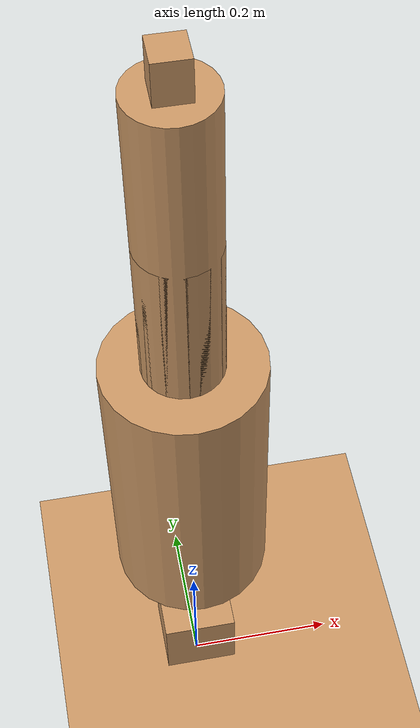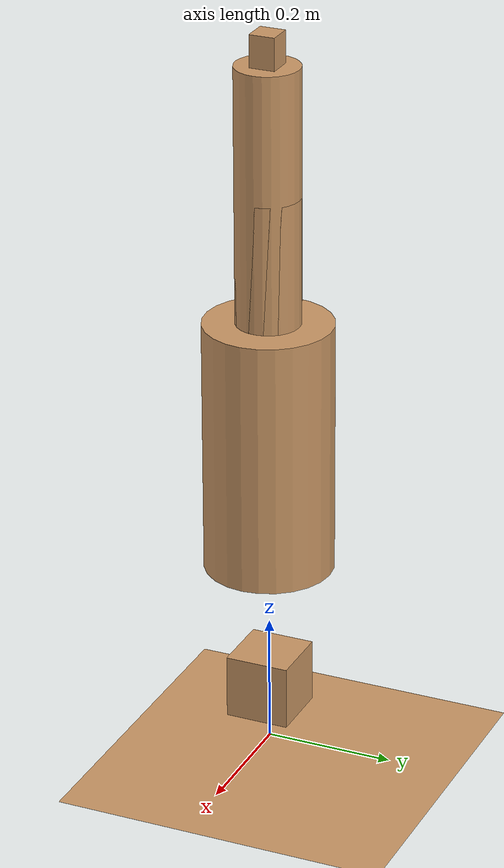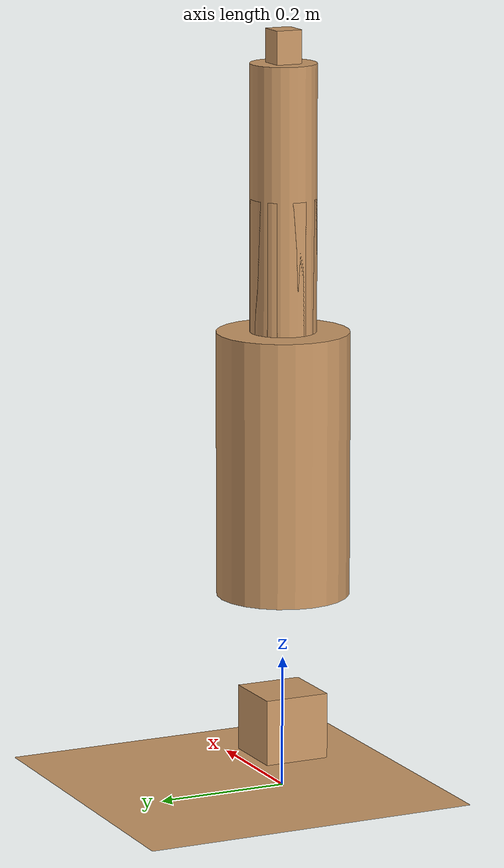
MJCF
<?xml version="1.0" encoding="UTF-8"?>
<mujoco model="simple_test">
  <compiler angle="radian" coordinate="local" meshdir="assets" texturedir="assets"/>

  <default>
    <default class="main">
      <geom contype="1" conaffinity="1" rgba="0.8 0.6 0.4 1"/>
    </default>
  </default>

  <worldbody>
    <!-- Sol -->
    <geom name="ground" type="plane" pos="0 0 0" size="0 0 0.05" class="main"/>

    <!-- Cube à saisir -->
    <body name="cube" pos="0 0 0.1">
      <geom name="cube_geom" type="box" size="0.05 0.05 0.05" mass="0.1" class="main"/>
    </body>

    <!-- Robot simple (bras) -->
    <body name="base" pos="0 0 0.5">
      <geom name="base_geom" type="cylinder" size="0.1 0.2" class="main"/>

      <body name="arm1" pos="0 0 0.2">
        <joint name="joint1" type="hinge" axis="0 0 1" range="-3.14 3.14"/>
        <geom name="arm1_geom" type="cylinder" size="0.05 0.2" class="main"/>

        <body name="arm2" pos="0 0 0.2">
          <joint name="joint2" type="hinge" axis="0 1 0" range="-3.14 3.14"/>
          <geom name="arm2_geom" type="cylinder" size="0.05 0.2" class="main"/>

          <body name="gripper" pos="0 0 0.2">
            <geom name="gripper_geom" type="box" size="0.02 0.02 0.05" class="main"/>
          </body>
        </body>
      </body>
    </body>
  </worldbody>

  <actuator>
    <motor name="motor1" joint="joint1" gear="100"/>
    <motor name="motor2" joint="joint2" gear="100"/>
  </actuator>

  <sensor>
    <framepos name="cube_pos" objtype="body" objname="cube"/>
    <framepos name="gripper_pos" objtype="body" objname="gripper"/>
  </sensor>
</mujoco>
